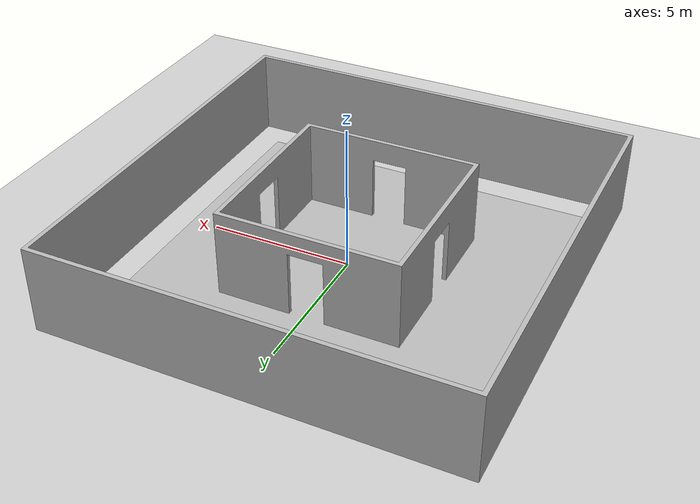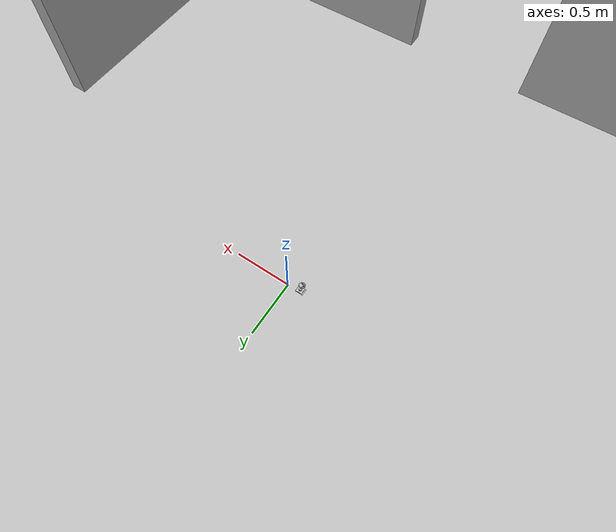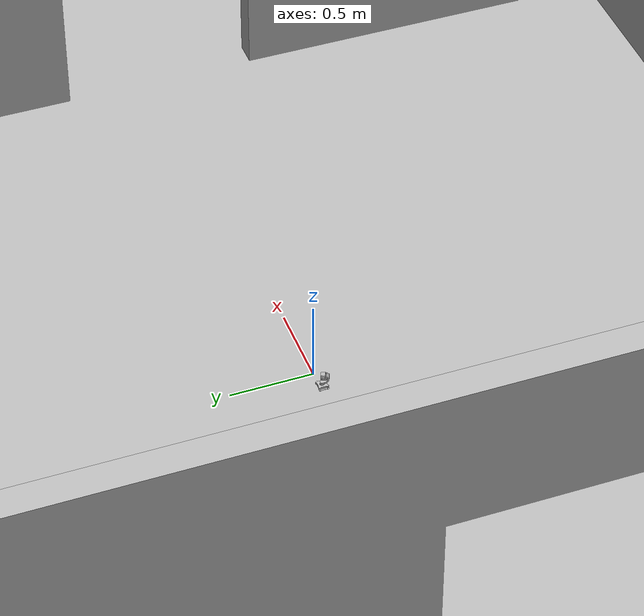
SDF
<?xml version="1.0" ?>
<sdf version="1.7">
  <world name="nesting_room_world">
    <light name='sun' type='directional'>
      <cast_shadows>1</cast_shadows>
      <pose>0 0 10 0 0 0</pose>
      <diffuse>0.8 0.8 0.8 1</diffuse>
      <specular>0.2 0.2 0.2 1</specular>
      <attenuation>
        <range>1000</range>
        <constant>0.9</constant>
        <linear>0.01</linear>
        <quadratic>0.001</quadratic>
      </attenuation>
      <direction>-0.5 0.1 -0.9</direction>
    </light>

    <model name='ground_plane'>
      <static>1</static>
      <link name='link'>
        <collision name='collision'>
          <geometry>
            <plane>
              <normal>0 0 1</normal>
              <size>60 60</size>
            </plane>
          </geometry>
          <surface>
            <friction>
              <ode>
                <mu>1</mu>
                <mu2>1</mu2>
              </ode>
            </friction>
            <bounce>
              <restitution_coefficient>0</restitution_coefficient>
            </bounce>
            <contact>
              <ode>
                <max_vel>0.1</max_vel>
                <min_depth>0.001</min_depth>
              </ode>
            </contact>
          </surface>
        </collision>
        <visual name='visual'>
          <cast_shadows>0</cast_shadows>
          <geometry>
            <plane>
              <normal>0 0 1</normal>
              <size>60 60</size>
            </plane>
          </geometry>
          <material>
            <script>
              <uri>file://media/materials/scripts/gazebo.material</uri>
              <name>Gazebo/Grey</name>
            </script>
          </material>
        </visual>
      </link>
    </model>

    <include>
      <uri>model://nesting_room_mesh</uri>
      <pose>0 0 0 0 0 0</pose>
    </include>

    <!-- Fixed central gimbal camera. Its base sits on the room floor. -->
    <include>
      <uri>model://camera_gimbal</uri>
      <name>camera_gimbal</name>
      <pose>-0.11576 -0.00882 0.02 0 0 0</pose>
    </include>
  </world>
</sdf>

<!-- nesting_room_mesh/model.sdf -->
<sdf version='1.7'>
  <model name='nesting_room_mesh'>
    <!-- 由桌面 map.obj 复刻当前 nesting_room 墙体几何（网格形式）：
         4 外墙 + 4 内墙(各 2 侧段) + 4 门楣 + 4 角柱，
         门洞 1.2x2.25m、墙厚 0.15m、墙高 3.0m，与世界原点对齐。 -->
    <static>1</static>
    <link name='link'>
      <pose>0 0 0 0 0 0</pose>
      <collision name='mesh_collision'>
        <geometry>
          <mesh>
            <uri>model://nesting_room_mesh/meshes/map.stl</uri>
            <scale>1 1 1</scale>
          </mesh>
        </geometry>
      </collision>
      <visual name='mesh_visual'>
        <geometry>
          <mesh>
            <uri>model://nesting_room_mesh/meshes/map.obj</uri>
            <scale>1 1 1</scale>
          </mesh>
        </geometry>
      </visual>
      <!-- 地面贴纸（地皮）：map_ground.png 贴图四边面，视觉 only，无碰撞 -->
      <visual name='floor_visual'>
        <pose>0 0 0 0 0 0</pose>
        <cast_shadows>0</cast_shadows>
        <geometry>
          <mesh>
            <uri>model://nesting_room_mesh/meshes/floor_ground.obj</uri>
            <scale>1 1 1</scale>
          </mesh>
        </geometry>
        <material>
          <script>
            <uri>model://nesting_room_mesh/materials/scripts</uri>
            <uri>model://nesting_room_mesh/materials/textures</uri>
            <name>room_floor</name>
          </script>
        </material>
      </visual>
    </link>
  </model>
</sdf>

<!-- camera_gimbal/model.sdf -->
<sdf version='1.7'>
  <model name='camera_gimbal'>
    <static>true</static>
    <link name='base_link'>
      <inertial>
        <pose>0.000139 0.000137 -0.001563 0 -0 0</pose>
        <mass>0.0790978</mass>
        <inertia>
          <ixx>2.68518e-05</ixx>
          <ixy>-2.05709e-08</ixy>
          <ixz>-5.74948e-08</ixz>
          <iyy>3.15512e-05</iyy>
          <iyz>-9.80534e-08</iyz>
          <izz>4.73266e-05</izz>
        </inertia>
      </inertial>
      <collision name='base_link_collision'>
        <pose>-0.004595 0.005183 -1.0195 0 -0 0</pose>
        <geometry>
          <mesh>
            <scale>0.001 0.001 0.001</scale>
            <uri>meshes/part_004_solid_004.stl</uri>
          </mesh>
        </geometry>
      </collision>
      <collision name='base_link_collision_1'>
        <pose>-0.004595 0.005183 -1.0195 0 -0 0</pose>
        <geometry>
          <mesh>
            <scale>0.001 0.001 0.001</scale>
            <uri>meshes/part_007_solid_007.stl</uri>
          </mesh>
        </geometry>
      </collision>
      <collision name='base_link_collision_2'>
        <pose>-0.004595 0.005183 -1.0195 0 -0 0</pose>
        <geometry>
          <mesh>
            <scale>0.001 0.001 0.001</scale>
            <uri>meshes/part_003_solid_003.stl</uri>
          </mesh>
        </geometry>
      </collision>
      <collision name='base_link_collision_3'>
        <pose>-0.004595 0.005183 -1.0195 0 -0 0</pose>
        <geometry>
          <mesh>
            <scale>0.001 0.001 0.001</scale>
            <uri>meshes/part_006_solid_006.stl</uri>
          </mesh>
        </geometry>
      </collision>
      <collision name='base_link_collision_4'>
        <pose>-0.004595 0.005183 -1.0195 0 -0 0</pose>
        <geometry>
          <mesh>
            <scale>0.001 0.001 0.001</scale>
            <uri>meshes/part_005_solid_005.stl</uri>
          </mesh>
        </geometry>
      </collision>
      <collision name='base_link_collision_5'>
        <pose>-0.004595 0.005183 -1.0195 0 -0 0</pose>
        <geometry>
          <mesh>
            <scale>0.001 0.001 0.001</scale>
            <uri>meshes/part_002_solid_002.stl</uri>
          </mesh>
        </geometry>
      </collision>
      <collision name='base_link_collision_6'>
        <pose>-0.004595 0.005183 -1.0195 0 -0 0</pose>
        <geometry>
          <mesh>
            <scale>0.001 0.001 0.001</scale>
            <uri>meshes/part_001_solid_001.stl</uri>
          </mesh>
        </geometry>
      </collision>
      <visual name='base_link_visual'>
        <pose>-0.004595 0.005183 -1.0195 0 -0 0</pose>
        <geometry>
          <mesh>
            <scale>0.001 0.001 0.001</scale>
            <uri>meshes/part_004_solid_004.stl</uri>
          </mesh>
        </geometry>
      </visual>
      <visual name='base_link_visual_1'>
        <pose>-0.004595 0.005183 -1.0195 0 -0 0</pose>
        <geometry>
          <mesh>
            <scale>0.001 0.001 0.001</scale>
            <uri>meshes/part_007_solid_007.stl</uri>
          </mesh>
        </geometry>
      </visual>
      <visual name='base_link_visual_2'>
        <pose>-0.004595 0.005183 -1.0195 0 -0 0</pose>
        <geometry>
          <mesh>
            <scale>0.001 0.001 0.001</scale>
            <uri>meshes/part_003_solid_003.stl</uri>
          </mesh>
        </geometry>
      </visual>
      <visual name='base_link_visual_3'>
        <pose>-0.004595 0.005183 -1.0195 0 -0 0</pose>
        <geometry>
          <mesh>
            <scale>0.001 0.001 0.001</scale>
            <uri>meshes/part_006_solid_006.stl</uri>
          </mesh>
        </geometry>
      </visual>
      <visual name='base_link_visual_4'>
        <pose>-0.004595 0.005183 -1.0195 0 -0 0</pose>
        <geometry>
          <mesh>
            <scale>0.001 0.001 0.001</scale>
            <uri>meshes/part_005_solid_005.stl</uri>
          </mesh>
        </geometry>
      </visual>
      <visual name='base_link_visual_5'>
        <pose>-0.004595 0.005183 -1.0195 0 -0 0</pose>
        <geometry>
          <mesh>
            <scale>0.001 0.001 0.001</scale>
            <uri>meshes/part_002_solid_002.stl</uri>
          </mesh>
        </geometry>
      </visual>
      <visual name='base_link_visual_6'>
        <pose>-0.004595 0.005183 -1.0195 0 -0 0</pose>
        <geometry>
          <mesh>
            <scale>0.001 0.001 0.001</scale>
            <uri>meshes/part_001_solid_001.stl</uri>
          </mesh>
        </geometry>
      </visual>
    </link>
    <joint name='link_YAW_joint' type='revolute'>
      <pose relative_to='base_link'>0.000208 0.000236 0.0195 0 -0 0</pose>
      <parent>base_link</parent>
      <child>link_YAW</child>
      <axis>
        <xyz>0 0 1</xyz>
        <limit>
          <lower>-1.57</lower>
          <upper>1.57</upper>
          <effort>10</effort>
          <velocity>5</velocity>
        </limit>
        <dynamics>
          <spring_reference>0</spring_reference>
          <spring_stiffness>0</spring_stiffness>
        </dynamics>
      </axis>
    </joint>
    <link name='link_YAW'>
      <pose relative_to='link_YAW_joint'>0 0 0 0 -0 0</pose>
      <inertial>
        <pose>-0.006998 -0.014614 0.013633 0 -0 0</pose>
        <mass>0.0236675</mass>
        <inertia>
          <ixx>1.51653e-05</ixx>
          <ixy>-2.2889e-06</ixy>
          <ixz>2.80856e-06</ixz>
          <iyy>1.14811e-05</iyy>
          <iyz>5.86542e-06</iyz>
          <izz>7.80669e-06</izz>
        </inertia>
      </inertial>
      <collision name='link_YAW_collision'>
        <pose>-0.004803 0.004947 -1.039 0 -0 0</pose>
        <geometry>
          <mesh>
            <scale>0.001 0.001 0.001</scale>
            <uri>meshes/part_008_solid_008.stl</uri>
          </mesh>
        </geometry>
      </collision>
      <visual name='link_YAW_visual'>
        <pose>-0.004803 0.004947 -1.039 0 -0 0</pose>
        <geometry>
          <mesh>
            <scale>0.001 0.001 0.001</scale>
            <uri>meshes/part_008_solid_008.stl</uri>
          </mesh>
        </geometry>
      </visual>
    </link>
    <joint name='link_ROLL_joint' type='revolute'>
      <pose relative_to='link_YAW'>-0.015352 -0.032061 0.05 1.5708 0 -0.446563</pose>
      <parent>link_YAW</parent>
      <child>link_ROLL</child>
      <axis>
        <xyz>0 0 1</xyz>
        <limit>
          <lower>-1.57</lower>
          <upper>1.57</upper>
          <effort>10</effort>
          <velocity>5</velocity>
        </limit>
        <dynamics>
          <spring_reference>0</spring_reference>
          <spring_stiffness>0</spring_stiffness>
        </dynamics>
      </axis>
    </joint>
    <link name='link_ROLL'>
      <pose relative_to='link_ROLL_joint'>0 0 0 0 -0 0</pose>
      <inertial>
        <pose>-6e-06 -6.4e-05 -0.0249 0 -0 0</pose>
        <mass>0.0518729</mass>
        <inertia>
          <ixx>1.07112e-05</ixx>
          <ixy>3.32842e-07</ixy>
          <ixz>1.56056e-08</ixz>
          <iyy>1.39846e-05</iyy>
          <iyz>1.55055e-07</iyz>
          <izz>1.20147e-05</izz>
        </inertia>
      </inertial>
      <collision name='link_ROLL_collision'>
        <pose>-0.006469 -1.089 -0.037935 -1.5708 0.446563 0</pose>
        <geometry>
          <mesh>
            <scale>0.001 0.001 0.001</scale>
            <uri>meshes/part_009_solid_009.stl</uri>
          </mesh>
        </geometry>
      </collision>
      <collision name='link_ROLL_fixed_joint_lump__link_PITCH_collision_1'>
        <pose>-0.006469 -1.089 -0.037935 -1.5708 0.446563 -0</pose>
        <geometry>
          <mesh>
            <scale>0.001 0.001 0.001</scale>
            <uri>meshes/part_010_solid_010.stl</uri>
          </mesh>
        </geometry>
        <surface>
          <contact>
            <ode/>
          </contact>
          <friction>
            <ode/>
          </friction>
        </surface>
      </collision>
      <visual name='link_ROLL_visual'>
        <pose>-0.006469 -1.089 -0.037935 -1.5708 0.446563 0</pose>
        <geometry>
          <mesh>
            <scale>0.001 0.001 0.001</scale>
            <uri>meshes/part_009_solid_009.stl</uri>
          </mesh>
        </geometry>
      </visual>
      <visual name='link_ROLL_fixed_joint_lump__link_PITCH_visual_1'>
        <pose>-0.006469 -1.089 -0.037935 -1.5708 0.446563 -0</pose>
        <geometry>
          <mesh>
            <scale>0.001 0.001 0.001</scale>
            <uri>meshes/part_010_solid_010.stl</uri>
          </mesh>
        </geometry>
      </visual>
      <sensor name='gimbal_camera' type='camera'>
        <update_rate>30</update_rate>
        <camera name='gimbal_camera'>
          <horizontal_fov>1.0472</horizontal_fov>
          <image>
            <width>640</width>
            <height>480</height>
            <format>R8G8B8</format>
          </image>
          <clip>
            <near>0.01</near>
            <far>100</far>
          </clip>
        </camera>
        <plugin name='camera_controller' filename='libgazebo_ros_camera.so'>
          <alwaysOn>1</alwaysOn>
          <updateRate>30.0</updateRate>
          <cameraName>gimbal_camera</cameraName>
          <imageTopicName>image_raw</imageTopicName>
          <cameraInfoTopicName>camera_info</cameraInfoTopicName>
          <frameName>link_PITCH</frameName>
          <hackBaseline>0.07</hackBaseline>
          <distortionK1>0.0</distortionK1>
          <distortionK2>0.0</distortionK2>
          <distortionK3>0.0</distortionK3>
          <distortionT1>0.0</distortionT1>
          <distortionT2>0.0</distortionT2>
        </plugin>
        <pose>0.034824 -0.003505 -0.028267 0.000796 1.36462 1.47048</pose>
      </sensor>
    </link>
    <frame name='link_PITCH_joint' attached_to='link_ROLL'>
      <pose>0.017412 -0.001753 -0.028267 1.5708 1.36462 1.47048</pose>
    </frame>
    <frame name='link_PITCH' attached_to='link_PITCH_joint'/>
  </model>
</sdf>
